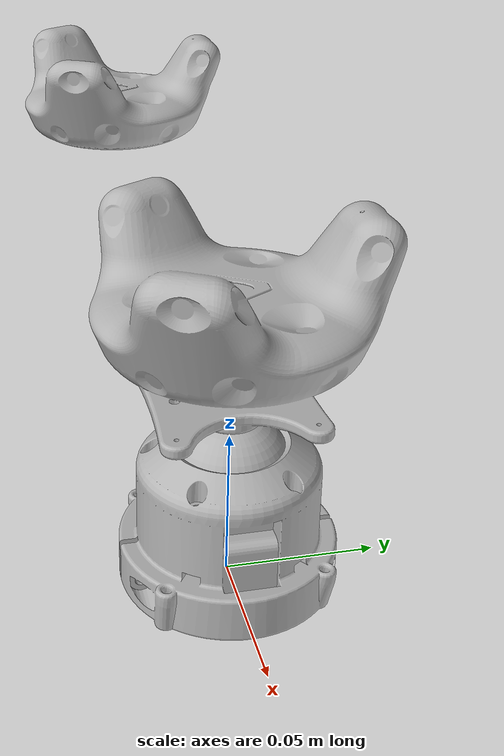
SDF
<?xml version="1.0" ?>
<sdf version="1.6">
	<model name="wrist_testbed">
		<link name="arm_right_lower">
			<self_collide>false</self_collide>
			<pose frame="">-0.18894083144631144 6.66924034808675e-05 0.08299649413848707 0.0 -0.0 0.0</pose>
			<inertial>
				<pose frame="">0.0 0.0 0.0 0 0 0</pose>
				<mass>1.2616679305449068</mass>
				<inertia>
					<ixx>0.01023128335694641</ixx>
					<ixy>1.3435930962272603e-05</ixy>
					<ixz>0.022680817605867543</ixz>
					<iyy>0.065089794225033</iyy>
					<iyz>-7.3637313618544225e-06</iyz>
					<izz>0.05596626358986321</izz>
				</inertia>
			</inertial>
			<collision name="arm_right_lower_collision">
				<geometry>
					<mesh>
						<uri>model://wrist_testbed/meshes/CAD/arm_right_lower.stl</uri>
						<scale>0.001 0.001 0.001</scale>
					</mesh>
				</geometry>
			</collision>
			<visual name="arm_right_lower_visual">
				<geometry>
					<mesh>
						<uri>model://wrist_testbed/meshes/CAD/arm_right_lower.stl</uri>
						<scale>0.001 0.001 0.001</scale>
					</mesh>
				</geometry>
			</visual>
		</link>
		<link name="hand_right">
			<self_collide>false</self_collide>
			<pose frame="">-0.00023417295336083173 6.510381395842973e-05 0.09205924941382375 0.0 -0.0 0.0</pose>
			<inertial>
				<pose frame="">0.0 0.0 0.0 0 0 0</pose>
				<mass>1.1047000476904287</mass>
				<inertia>
					<ixx>0.010140303095379107</ixx>
					<ixy>-3.191495137226376e-06</ixy>
					<ixz>3.0343031201385687e-05</ixz>
					<iyy>0.010138809698272796</iyy>
					<iyz>-7.337182910598767e-06</iyz>
					<izz>0.0010421942131185154</izz>
				</inertia>
			</inertial>
			<collision name="hand_right_collision">
				<geometry>
					<mesh>
						<uri>model://wrist_testbed/meshes/CAD/hand_right.stl</uri>
						<scale>0.001 0.001 0.001</scale>
					</mesh>
				</geometry>
			</collision>
			<visual name="hand_right_visual">
				<geometry>
					<mesh>
						<uri>model://wrist_testbed/meshes/CAD/hand_right.stl</uri>
						<scale>0.001 0.001 0.001</scale>
					</mesh>
				</geometry>
			</visual>
		</link>
		<link name="sphere_link1">
			<self_collide>false</self_collide>
			<pose frame="">-6.095339263816667e-17 1.2532473252707166e-18 0.03799999999999997 0.0 -0.0 0.0</pose>
			<inertial>
				<pose frame="">0.0 0.0 0.0 0 0 0</pose>
				<mass>0.03806502884740436</mass>
				<inertia>
					<ixx>5.664456942782235e-05</ixx>
					<ixy>2.168404344971009e-22</ixy>
					<ixz>8.647596527744384e-20</ixz>
					<iyy>5.664456942782236e-05</iyy>
					<iyz>-3.9031278209478164e-21</iyz>
					<izz>1.6786677721705307e-06</izz>
				</inertia>
			</inertial>
			<collision name="sphere_link1_collision">
				<geometry>
					<mesh>
						<uri>model://wrist_testbed/meshes/CAD/sphere_link1.stl</uri>
						<scale>0.001 0.001 0.001</scale>
					</mesh>
				</geometry>
			</collision>
			<visual name="sphere_link1_visual">
				<geometry>
					<mesh>
						<uri>model://wrist_testbed/meshes/CAD/sphere_link1.stl</uri>
						<scale>0.001 0.001 0.001</scale>
					</mesh>
				</geometry>
			</visual>
		</link>
		<link name="sphere_link2">
			<self_collide>false</self_collide>
			<pose frame="">-6.235312389929044e-17 -4.522978036277939e-19 0.037999999999999964 0.0 -0.0 0.0</pose>
			<inertial>
				<pose frame="">0.0 0.0 0.0 0 0 0</pose>
				<mass>0.0029963725331776064</mass>
				<inertia>
					<ixx>4.351032555427194e-06</ixx>
					<ixy>8.851426536171483e-24</ixy>
					<ixz>7.048731390235643e-21</ixz>
					<iyy>4.351032555427193e-06</iyy>
					<iyz>9.757819552369541e-23</iyz>
					<izz>2.4270617518738147e-08</izz>
				</inertia>
			</inertial>
			<collision name="sphere_link2_collision">
				<geometry>
					<mesh>
						<uri>model://wrist_testbed/meshes/CAD/sphere_link2.stl</uri>
						<scale>0.001 0.001 0.001</scale>
					</mesh>
				</geometry>
			</collision>
			<visual name="sphere_link2_visual">
				<geometry>
					<mesh>
						<uri>model://wrist_testbed/meshes/CAD/sphere_link2.stl</uri>
						<scale>0.001 0.001 0.001</scale>
					</mesh>
				</geometry>
			</visual>
		</link>
		<joint name="sphere_axis0" type="revolute">
			<parent>arm_right_lower</parent>
			<child>sphere_link1</child>
			<pose frame="">-1.219096740842095e-18 -1.2532473252596094e-18 0.0 0 0 0</pose>
			<axis>
				<xyz>1.0 -4.548984898884431e-28 -2.4308653429145085e-62</xyz>
				<limit>
					<lower>-3.141592653589793</lower>
					<upper>3.141592653589793</upper>
				</limit>
				<use_parent_model_frame>0</use_parent_model_frame>
			</axis>
		</joint>
		<joint name="sphere_axis1" type="revolute">
			<parent>sphere_link1</parent>
			<child>sphere_link2</child>
			<pose frame="">1.8063452028167217e-19 4.52297803638901e-19 8.881784197001253e-18 0 0 0</pose>
			<axis>
				<xyz>5.548557947460961e-28 1.0 1.2289325959195016e-28</xyz>
				<limit>
					<lower>-3.141592653589793</lower>
					<upper>3.141592653589793</upper>
				</limit>
				<use_parent_model_frame>0</use_parent_model_frame>
			</axis>
		</joint>
		<joint name="sphere_axis2" type="revolute">
			<parent>sphere_link2</parent>
			<child>hand_right</child>
			<pose frame="">0.00023417295336076955 -6.510381395842973e-05 -0.05405924941382377 0 0 0</pose>
			<axis>
				<xyz>-6.599952185900785e-56 -1.2289325959195016e-28 1.0</xyz>
				<limit>
					<lower>-3.141592653589793</lower>
					<upper>3.141592653589793</upper>
				</limit>
				<use_parent_model_frame>0</use_parent_model_frame>
			</axis>
		</joint>
		<plugin filename="libcardsflow_gazebo_plugin.so" name="cardsflow_gazebo_plugin"/>
	</model>
</sdf>
